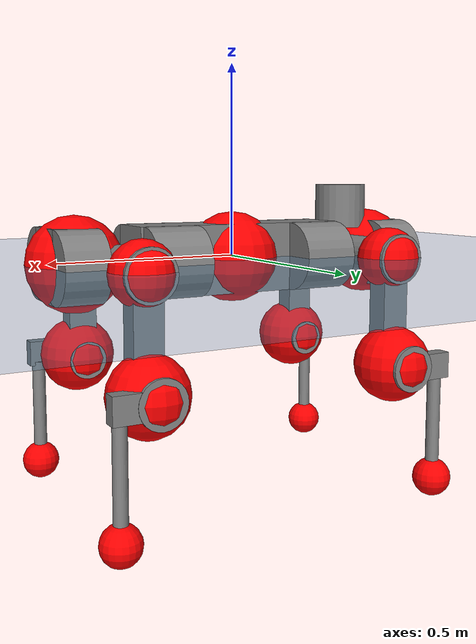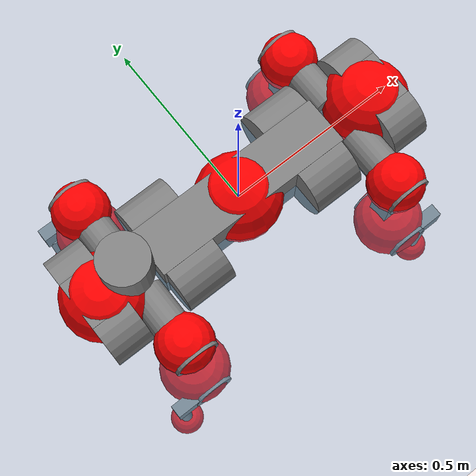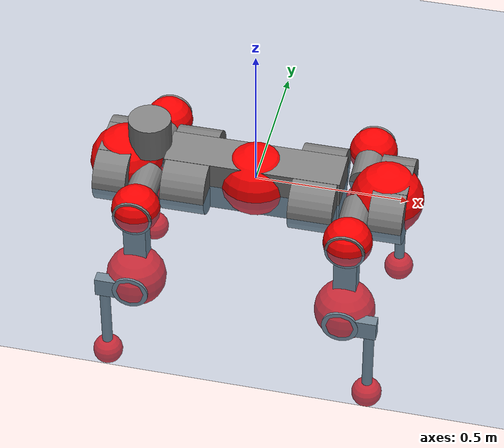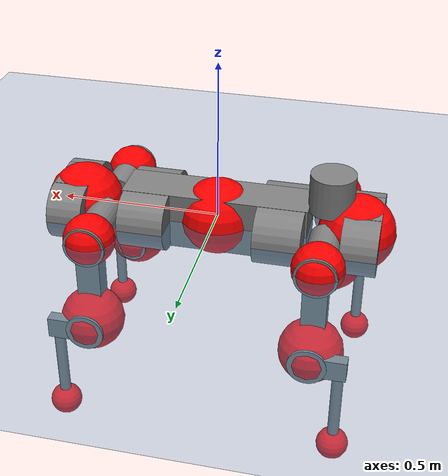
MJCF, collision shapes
<mujoco model="anymal_c">
  <compiler angle="radian" assetdir="assets" balanceinertia="true" inertiafromgeom="false"/>

  <option timestep="0.005" density="1.2" viscosity="2e-05"/>

  <size nkey="1"/>

  <visual>
    <quality shadowsize="8192"/>
    <map shadowclip="0.5"/>
  </visual>

  <default>
    <default class="/">
      <material specular="0" shininess="0.25"/>
      <geom contype="0" conaffinity="0" group="1" solref="-1000 -80"/>
      <site size="0.01 0.005 0.005" group="5"/>
      <general forcelimited="true" forcerange="-80 80" biastype="affine" gainprm="80" biasprm="0 -80 -2"/>
      <default class="anymal_c">
        <joint armature="0.01" damping="0.01" frictionloss="0.1"/>
        <default class="visual">
          <geom type="mesh" group="2"/>
          <default class="visual_zflip"/>
        </default>
        <default class="collision">
          <geom type="cylinder" group="3"/>
          <default class="foot">
            <geom size="0.03 0 0" type="sphere" condim="6" priority="1" friction="0.8 0.02 0.01" solimp="0.015 1 0.03"/>
          </default>
        </default>
      </default>
      <default class="reward_collision_sphere">
        <geom group="5" rgba="1 0 0 1"/>
      </default>
    </default>
  </default>

  <asset>
    <texture type="skybox" colorspace="auto" name="//unnamed_texture_0" builtin="gradient" rgb1="0.95 0.95 0.95" rgb2="0.95 0.95 0.95" width="100" height="600"/>
    <texture type="2d" colorspace="auto" name="texplane" builtin="checker" rgb1="0.345 0.575 0.748" rgb2="0.345 0.575 0.748" markrgb="1 1 1" width="512" height="512"/>
    <texture type="2d" colorspace="linear" name="base" file="base.png"/>
    <texture type="2d" colorspace="linear" name="top_shell" file="top_shell.png"/>
    <texture type="2d" colorspace="linear" name="bottom_shell" file="bottom_shell.png"/>
    <texture type="2d" colorspace="linear" name="remote" file="remote.png"/>
    <texture type="2d" colorspace="linear" name="hatch" file="hatch.png"/>
    <texture type="2d" colorspace="linear" name="handle" file="handle.png"/>
    <texture type="2d" colorspace="linear" name="face" file="face.png"/>
    <texture type="2d" colorspace="linear" name="battery" file="battery.png"/>
    <texture type="2d" colorspace="linear" name="lidar_cage" file="lidar_cage.png"/>
    <texture type="2d" colorspace="linear" name="depth_camera" file="depth_camera.png"/>
    <texture type="2d" colorspace="linear" name="wide_angle_camera" file="wide_angle_camera.png"/>
    <texture type="2d" colorspace="linear" name="lidar" file="lidar.png"/>
    <texture type="2d" colorspace="linear" name="drive" file="drive.png"/>
    <texture type="2d" colorspace="linear" name="hip_l" file="hip_l.png"/>
    <texture type="2d" colorspace="linear" name="shank_l" file="shank_l.png"/>
    <texture type="2d" colorspace="linear" name="foot" file="foot.png"/>
    <texture type="2d" colorspace="linear" name="thigh" file="thigh.png"/>
    <texture type="2d" colorspace="linear" name="shank_r" file="shank_r.png"/>
    <texture type="2d" colorspace="linear" name="hip_r" file="hip_r.png"/>
    <material name="MatPlane" class="/" texture="texplane" texuniform="true" texrepeat="2 2" specular="0.9" shininess="0.5"/>
    <material name="black_plastic" class="/" rgba="0.007 0.007 0.007 1"/>
    <material name="green" class="/" rgba="0.052 0.178 0.033 1"/>
    <material name="red" class="/" rgba="0.178 0.006 0.005 1"/>
    <material name="yellow" class="/" rgba="0.178 0.119 0.006 1"/>
    <material name="lwl" class="/" rgba="0.8 0.8 0.8 1"/>
    <material name="base" class="/" texture="base"/>
    <material name="top_shell" class="/" texture="top_shell"/>
    <material name="bottom_shell" class="/" texture="bottom_shell"/>
    <material name="hip_l" class="/" texture="hip_l"/>
    <material name="thigh" class="/" texture="thigh"/>
    <material name="shank_l" class="/" texture="shank_l"/>
    <material name="foot" class="/" texture="foot"/>
    <material name="hip_r" class="/" texture="hip_r"/>
    <material name="shank" class="/" texture="shank_r"/>
    <material name="hatch" class="/" texture="hatch"/>
    <material name="remote" class="/" texture="remote"/>
    <material name="handle" class="/" texture="handle"/>
    <material name="face" class="/" texture="face"/>
    <material name="depth_camera" class="/" texture="depth_camera"/>
    <material name="wide_angle_camera" class="/" texture="wide_angle_camera"/>
    <material name="battery" class="/" texture="battery"/>
    <material name="lidar_cage" class="/" texture="lidar_cage"/>
    <material name="lidar" class="/" texture="lidar"/>
    <material name="drive" class="/" texture="drive"/>
    <mesh name="base_0" class="/" file="base_0.obj"/>
    <mesh name="base_1" class="/" file="base_1.obj"/>
    <mesh name="base_2" class="/" file="base_2.obj"/>
    <mesh name="base_3" class="/" file="base_3.obj"/>
    <mesh name="base_4" class="/" file="base_4.obj"/>
    <mesh name="base_5" class="/" file="base_5.obj"/>
    <mesh name="top_shell" class="/" file="top_shell.obj"/>
    <mesh name="bottom_shell" class="/" file="bottom_shell.obj"/>
    <mesh name="remote" class="/" file="remote.obj"/>
    <mesh name="handle" class="/" file="handle.obj"/>
    <mesh name="face" class="/" file="face.obj"/>
    <mesh name="wide_angle_camera" class="/" file="wide_angle_camera.obj"/>
    <mesh name="depth_camera" class="/" file="depth_camera.obj"/>
    <mesh name="battery" class="/" file="battery.obj"/>
    <mesh name="lidar_cage" class="/" file="lidar_cage.obj"/>
    <mesh name="lidar" class="/" file="lidar.obj"/>
    <mesh name="drive" class="/" file="drive.obj"/>
    <mesh name="hip_l" class="/" file="hip_l.obj"/>
    <mesh name="thigh" class="/" file="thigh.obj"/>
    <mesh name="shank_l" class="/" file="shank_l.obj"/>
    <mesh name="foot" class="/" file="foot.obj"/>
    <mesh name="hip_r" class="/" file="hip_r.obj"/>
    <mesh name="hatch" class="/" file="hatch.obj"/>
    <mesh name="shank_r" class="/" file="shank_r.obj"/>
  </asset>

  <worldbody>
    <geom name="floor" class="/" size="100 100 0.125" type="plane" group="0" material="MatPlane"/>
    <light name="toplight_shadow" class="/" pos="0 0 5" dir="0.0990148 0.0990148 -0.990148" type="directional" ambient="0.04 0.04 0.04" diffuse="0.55 0.55 0.55" specular="0.12 0.12 0.12"/>
    <light name="toplight_fill" class="/" pos="0 0 5" dir="0.0990148 0.0990148 -0.990148" type="directional" castshadow="false" ambient="0.04 0.04 0.04" diffuse="0.3 0.3 0.3" specular="0.08 0.08 0.08"/>
    <body name="trunk" childclass="anymal_c" pos="-0.000252188 0.000184117 -0.00191277" quat="1 0.000416114 -0.000240419 -7.318e-05">
      <inertial pos="0.00153049 -0.000450075 0.0495383" quat="0.499822 0.501031 0.499529 0.499616" mass="18.3834" diaginertia="0.508583 0.780089 0.181053"/>
      <joint name="//unnamed_joint_0" type="free" armature="0" damping="0" frictionloss="0"/>
      <geom name="//unnamed_geom_1" class="visual" material="green" mesh="base_0"/>
      <geom name="//unnamed_geom_2" class="visual" material="yellow" mesh="base_1"/>
      <geom name="//unnamed_geom_3" class="visual" material="red" mesh="base_2"/>
      <geom name="//unnamed_geom_4" class="visual" material="black_plastic" mesh="base_3"/>
      <geom name="//unnamed_geom_5" class="visual" material="lwl" mesh="base_4"/>
      <geom name="//unnamed_geom_6" class="visual" material="base" mesh="base_5"/>
      <geom name="trunk_1" class="collision" size="0.288456 0.0696274 0.0895209" type="box"/>
      <geom name="trunk_2" class="collision" size="0.0895209 0.0721141" pos="0.20895 0.0738099 0" quat="0.707107 0 0.707107 0"/>
      <geom name="trunk_3" class="collision" size="0.0895209 0.0721141" pos="-0.20895 0.0738099 0" quat="0.707107 0 0.707107 0"/>
      <geom name="trunk_4" class="collision" size="0.0895209 0.0721141" pos="0.20895 -0.0738099 0" quat="0.707107 0 0.707107 0"/>
      <geom name="trunk_5" class="collision" size="0.0895209 0.0721141" pos="-0.20895 -0.0738099 0" quat="0.707107 0 0.707107 0"/>
      <geom name="//unnamed_geom_12" class="visual" material="top_shell" mesh="top_shell"/>
      <geom name="//unnamed_geom_13" class="visual" material="bottom_shell" mesh="bottom_shell"/>
      <geom name="//unnamed_geom_14" class="visual" material="remote" mesh="remote"/>
      <geom name="//unnamed_geom_15" class="visual" material="handle" mesh="handle"/>
      <geom name="//unnamed_geom_16" class="visual" pos="0.398205 0 0" quat="1 0 0 0" material="face" mesh="face"/>
      <geom name="trunk_6" class="collision" size="0.0547072 0.0696274 0.0895209" pos="0.451043 0 0" type="box"/>
      <geom name="//unnamed_geom_18" class="collision" size="0.0895209 0.0547072" pos="0.451043 0.0738099 0" quat="0.707107 0 0.707107 0"/>
      <geom name="//unnamed_geom_19" class="collision" size="0.0895209 0.0547072" pos="0.451043 -0.0738099 0" quat="0.707107 0 0.707107 0"/>
      <geom name="//unnamed_geom_20" class="visual" pos="0.443502 0 -0.0283549" quat="0.965926 0 0.258819 0" material="depth_camera" mesh="depth_camera"/>
      <geom name="//unnamed_geom_21" class="visual" pos="0.492833 0 0.0145047" material="wide_angle_camera" mesh="wide_angle_camera"/>
      <geom name="//unnamed_geom_22" class="visual_zflip" pos="-0.398205 0 0" quat="0 0 0 1" material="face" mesh="face"/>
      <geom name="trunk_7" class="collision" size="0.0547072 0.0696274 0.0895209" pos="-0.451043 0 0" quat="0 0 0 1" type="box"/>
      <geom name="//unnamed_geom_24" class="collision" size="0.0895209 0.0547072" pos="-0.451043 -0.0738099 0" quat="0 -0.707107 0 0.707107"/>
      <geom name="//unnamed_geom_25" class="collision" size="0.0895209 0.0547072" pos="-0.451043 0.0738099 0" quat="0 -0.707107 0 0.707107"/>
      <geom name="//unnamed_geom_26" class="visual" pos="-0.443502 0 -0.0283549" quat="0 -0.258819 0 0.965926" material="depth_camera" mesh="depth_camera"/>
      <geom name="//unnamed_geom_27" class="visual_zflip" pos="-0.492833 0 0.0145047" quat="0 0 0 1" material="wide_angle_camera" mesh="wide_angle_camera"/>
      <geom name="//unnamed_geom_28" class="visual" material="battery" mesh="battery"/>
      <geom name="//unnamed_geom_29" class="visual" pos="0 0.0818518 0.0280845" quat="0.683013 -0.183013 0.183013 0.683013" material="depth_camera" mesh="depth_camera"/>
      <geom name="//unnamed_geom_30" class="visual" pos="0 -0.0818518 0.0280845" quat="0.683013 0.183013 0.183013 -0.683013" material="depth_camera" mesh="depth_camera"/>
      <geom name="//unnamed_geom_31" class="visual" pos="-0.34969 0 0.0712153" quat="1 0 0 0" material="lidar_cage" mesh="lidar_cage"/>
      <geom name="trunk_8" class="collision" size="0.0696274 0.0596806" pos="-0.34969 0 0.12935"/>
      <geom name="//unnamed_geom_33" class="visual" pos="-0.34969 3.68275e-05 0.13778" quat="0.707107 0 0 -0.707107" material="lidar" mesh="lidar"/>
      <geom name="//unnamed_geom_34" class="visual" pos="0.28811 0.10963 1.47507e-09" quat="0.258819 0.965926 0 0" material="drive" mesh="drive"/>
      <geom name="//unnamed_geom_35" class="visual" pos="0.28811 -0.10963 -1.47507e-09" quat="0.258819 -0.965926 0 0" material="drive" mesh="drive"/>
      <geom name="//unnamed_geom_36" class="visual" pos="-0.28811 0.10963 -1.47507e-09" quat="0 0 0.965926 -0.258819" material="drive" mesh="drive"/>
      <geom name="//unnamed_geom_37" class="visual" pos="-0.28811 -0.10963 1.47507e-09" quat="0 0 -0.965926 -0.258819" material="drive" mesh="drive"/>
      <geom name="//unnamed_geom_38" class="visual" pos="0.11144 0 0.0707309" quat="1 0 0 0" material="hatch" mesh="hatch"/>
      <geom name="//unnamed_geom_39" class="reward_collision_sphere" size="0.119361"/>
      <geom name="//unnamed_geom_40" class="reward_collision_sphere" size="0.119361" pos="0.43231 0 0"/>
      <geom name="//unnamed_geom_41" class="reward_collision_sphere" size="0.119361" pos="-0.43231 0 0"/>
      <site name="imu" pos="0.251891 -0.004374 0.0581847" size="0.00994677"/>
      <camera name="track" pos="0 -2.10885 0" quat="0.707107 0.707107 0 0" mode="trackcom"/>
      <camera name="ego_camera" pos="0.43231 0 -0.0387566" quat="-0.5 -0.5 0.5 0.5"/>
      <body name="LF_HIP" pos="0.289363 0.107744 6.79481e-05" quat="0.258135 0.966108 -0.00023475 0.000864915">
        <inertial pos="0.0538151 -0.0149307 -0.010624" quat="-0.125712 0.709698 -0.133117 0.680298" mass="2.58889" diaginertia="0.00464548 0.00601799 0.00281711"/>
        <joint name="LF_HAA" pos="0 0 0" axis="1 0.000134231 0.000585482" range="-0.773931 0.49861" armature="0.0112386" damping="0.0225734" frictionloss="0.0947279"/>
        <geom name="//unnamed_geom_42" class="visual" pos="0 8.67715e-05 -1.42521e-05" quat="0.258819 -0.965926 0 0" material="hip_l" mesh="hip_l"/>
        <geom name="//unnamed_geom_43" class="visual" pos="0.0575452 -0.0709321 -0.0403202" quat="0.183013 -0.683013 0.683013 0.183013" material="drive" mesh="drive"/>
        <geom name="//unnamed_geom_44" class="collision" size="0.0497338 0.0696274" pos="0.0575452 -0.0126107 -0.00669037" quat="-0.353553 -0.612372 0.612372 -0.353553"/>
        <body name="LF_THIGH" pos="0.0576771 -0.078176 -0.0384741" quat="0.182717 -0.682995 0.683113 0.183">
          <inertial pos="0.0306715 0.000300038 -0.240655" quat="0.993114 -0.00726683 -0.077914 0.0871868" mass="3.08166" diaginertia="0.0245586 0.039476 0.00360443"/>
          <joint name="LF_HFE" pos="0 0 0" axis="0.999925 -0.0106373 -0.00602563" range="-3.18639 3.19393" armature="0.0109091" damping="0.0108486" frictionloss="0.0990116"/>
          <geom name="//unnamed_geom_45" class="visual" pos="-0.00186503 -2.93886e-06 0" quat="0.707107 0 0 -0.707107" material="thigh" mesh="thigh"/>
          <geom name="//unnamed_geom_46" class="collision" size="0.064654 0.0397871" pos="0.0384275 0 0" quat="0.5 0.5 -0.5 -0.5"/>
          <geom name="//unnamed_geom_47" class="collision" size="0.0373004 0.0298403 0.140562" pos="0.0288206 0 -0.136921" quat="0.707107 0 0 -0.707107" type="box"/>
          <geom name="//unnamed_geom_48" class="visual" pos="0.096357 0 -0.276141" quat="1 0 0 0" material="drive" mesh="drive"/>
          <geom name="//unnamed_geom_49" class="collision" size="0.0497338 0.0696274" pos="0.0291088 0 -0.276141" quat="0.707107 0 0.707107 0"/>
          <geom name="//unnamed_geom_50" class="reward_collision_sphere" size="0.0795741" pos="0.0240172 0 0"/>
          <body name="LF_SHANK" pos="0.0941028 0.00194413 -0.274489" quat="1 3.44134e-05 -1.28839e-06 4.49433e-05">
            <inertial pos="0.00582017 -0.0645926 -0.0785645" quat="0.992855 -0.116451 -0.0002242 -0.0260527" mass="0.548147" diaginertia="0.00829834 0.0121948 0.000928734"/>
            <joint name="LF_KFE" pos="0 0 0" axis="0.999973 0.0044534 -0.00588833" range="-3.13315 3.11733" armature="0.008665" damping="0.0133919" frictionloss="0.0900144"/>
            <geom name="//unnamed_geom_51" class="visual" pos="-0.000608147 -0.00324267 0" quat="0.707107 0 0 -0.707107" material="shank_l" mesh="shank_l"/>
            <geom name="LF_kfe_act" class="collision" size="0.0596806 0.0198935" pos="0.0192138 0 0" quat="0.5 0.5 -0.5 -0.5"/>
            <geom name="//unnamed_geom_53" class="collision" size="0.0571929 0.0335703 0.0188989" pos="0.0192138 -0.0606285 0" quat="0.5 0.5 -0.5 -0.5" type="box"/>
            <geom name="//unnamed_geom_54" class="visual" pos="0.0125371 -0.0937818 -0.327465" quat="0.382683 0 0 -0.92388" material="foot" mesh="foot"/>
            <geom name="LF_calf" class="collision" size="0.0174068 0.1405" pos="0.012537 -0.0927368 -0.163732" quat="0.707107 0 0 -0.707107"/>
            <geom name="LF_foot" class="foot" size="0.0306317" pos="0.012537 -0.0927368 -0.305664" quat="0.707107 0 0 -0.707107"/>
            <geom name="//unnamed_geom_57" class="reward_collision_sphere" size="0.0994677" pos="-0.0480344 0 0"/>
            <geom name="//unnamed_geom_58" class="reward_collision_sphere" size="0.0497338" pos="0.012537 -0.0927368 -0.305664"/>
            <site name="LF_foot" class="foot" pos="0.012537 -0.0927368 -0.305664" quat="0.707107 0 0 -0.707107" size="0.00994677"/>
          </body>
        </body>
      </body>
      <body name="RF_HIP" pos="0.291197 -0.112115 0.00125146" quat="0.258383 -0.966043 0.000355548 -9.42106e-05">
        <inertial pos="0.054658 0.0174865 -0.00920154" quat="0.134424 0.678685 0.128304 0.710531" mass="2.80758" diaginertia="0.00481317 0.00617306 0.00280689"/>
        <joint name="RF_HAA" pos="0 0 0" axis="0.999989 0.00428859 -0.00162761" stiffness="0.00406787" range="-0.462689 0.721482" armature="0.0103795" damping="0.0210233" frictionloss="0.0879701"/>
        <geom name="//unnamed_geom_59" class="visual" pos="0 -8.67708e-05 -1.42521e-05" quat="0.258819 0.965926 0 0" material="hip_r" mesh="hip_r"/>
        <geom name="//unnamed_geom_60" class="visual" pos="0.0575452 0.0709321 -0.0403202" quat="0.183013 0.683013 0.683013 -0.183013" material="drive" mesh="drive"/>
        <geom name="//unnamed_geom_61" class="collision" size="0.0497338 0.0696274" pos="0.0575452 0.0126107 -0.00669037" quat="-0.353553 0.612372 0.612372 0.353553"/>
        <body name="RF_THIGH" pos="0.0564628 0.0788648 -0.0423606" quat="0.184307 0.682981 0.682473 -0.183844">
          <inertial pos="0.0287088 -0.000643701 -0.237676" quat="0.992786 -0.00511616 -0.0805822 0.0886365" mass="2.86858" diaginertia="0.0243607 0.0369729 0.00357108"/>
          <joint name="RF_HFE" pos="0 0 0" axis="0.999997 -0.00108662 0.0020927" stiffness="0.00588573" range="-3.17163 3.14084" armature="0.00948364" damping="0.00488811" frictionloss="0.0906164"/>
          <geom name="//unnamed_geom_62" class="visual" pos="-0.00186503 -2.93886e-06 0" quat="0.707107 0 0 -0.707107" material="thigh" mesh="thigh"/>
          <geom name="//unnamed_geom_63" class="collision" size="0.064654 0.0397871" pos="0.0384275 0 0" quat="0.5 0.5 0.5 0.5"/>
          <geom name="//unnamed_geom_64" class="collision" size="0.0373004 0.0298403 0.140562" pos="0.0288206 0 -0.136921" quat="0.707107 0 0 0.707107" type="box"/>
          <geom name="//unnamed_geom_65" class="visual" pos="0.096357 0 -0.276141" quat="1 0 0 0" material="drive" mesh="drive"/>
          <geom name="//unnamed_geom_66" class="collision" size="0.0497338 0.0696274" pos="0.0291088 0 -0.276141" quat="0.707107 0 0.707107 0"/>
          <geom name="//unnamed_geom_67" class="reward_collision_sphere" size="0.0795741" pos="0.0240172 0 0"/>
          <body name="RF_SHANK" pos="0.0960326 0.00205908 -0.27352" quat="1 -6.79338e-05 -0.00040303 0.000347258">
            <inertial pos="0.00278457 0.06286 -0.0791048" quat="0.991851 0.125453 0.00392893 0.0218759" mass="0.592832" diaginertia="0.00858575 0.0121978 0.000968113"/>
            <joint name="RF_KFE" pos="0 0 0" axis="0.999962 -0.00711167 -0.00503101" range="-3.08877 3.11908" armature="0.0100667" damping="0.01264" frictionloss="0.107137"/>
            <geom name="//unnamed_geom_68" class="visual" pos="-0.000608143 0.00324266 0" quat="0.707107 0 0 0.707107" material="shank" mesh="shank_r"/>
            <geom name="RF_kfe_act" class="collision" size="0.0596806 0.0198935" pos="0.0192138 0 0" quat="0.5 0.5 0.5 0.5"/>
            <geom name="//unnamed_geom_70" class="collision" size="0.0571929 0.0335703 0.0188989" pos="0.0192138 0.0606285 0" quat="0.5 0.5 0.5 0.5" type="box"/>
            <geom name="//unnamed_geom_71" class="visual" pos="0.0125368 0.0937818 -0.327465" quat="0.382683 0 0 0.92388" material="foot" mesh="foot"/>
            <geom name="RF_calf" class="collision" size="0.0174068 0.1405" pos="0.012537 0.0927368 -0.163732" quat="0.707107 0 0 0.707107"/>
            <geom name="RF_foot" class="foot" size="0.0293851" pos="0.012537 0.0927368 -0.305664" quat="0.707107 0 0 0.707107"/>
            <geom name="//unnamed_geom_74" class="reward_collision_sphere" size="0.0994677" pos="-0.0480344 0 0"/>
            <geom name="//unnamed_geom_75" class="reward_collision_sphere" size="0.0497338" pos="0.012537 0.0927368 -0.305664"/>
            <site name="RF_foot" class="foot" pos="0.012537 0.0927368 -0.305664" quat="0.707107 0 0 0.707107" size="0.00994677"/>
          </body>
        </body>
      </body>
      <body name="LH_HIP" pos="-0.28883 0.111307 0.000412088" quat="-2.62549e-05 3.05691e-06 0.965924 -0.258826">
        <inertial pos="0.0518345 0.0152188 -0.00714821" quat="0.138581 0.671775 0.128057 0.716321" mass="2.80147" diaginertia="0.00495391 0.00660163 0.00271646"/>
        <joint name="LH_HAA" pos="0 0 0" axis="0.999962 0.00833496 0.00243018" range="-0.460301 0.667937" armature="0.0101867" damping="0" frictionloss="0.112987"/>
        <geom name="//unnamed_geom_76" class="visual" pos="0 -8.67708e-05 -1.42521e-05" quat="-0.258819 -0.965926 0 0" material="hip_r" mesh="hip_r"/>
        <geom name="//unnamed_geom_77" class="visual" pos="0.0575452 0.0709321 -0.0403202" quat="0.183013 0.683013 0.683013 -0.183013" material="drive" mesh="drive"/>
        <geom name="//unnamed_geom_78" class="collision" size="0.0497338 0.0696274" pos="0.0575452 0.0126107 -0.00669037" quat="-0.353553 0.612372 0.612372 0.353553"/>
        <body name="LH_THIGH" pos="0.0569824 0.0755761 -0.0417915" quat="0.182863 0.681979 0.683985 -0.183387">
          <inertial pos="0.0271501 -0.00200596 -0.237677" quat="0.994037 -0.0118455 -0.0715039 0.0814694" mass="2.96985" diaginertia="0.0243368 0.0375916 0.00368659"/>
          <joint name="LH_HFE" pos="0 0 0" axis="0.999998 -0.000575638 0.00179515" stiffness="0.010575" range="-3.14884 3.14046" armature="0.0099665" damping="0.00302329" frictionloss="0.100643"/>
          <geom name="//unnamed_geom_79" class="visual" pos="-0.00186503 -2.93886e-06 0" quat="0.707107 0 0 -0.707107" material="thigh" mesh="thigh"/>
          <geom name="//unnamed_geom_80" class="collision" size="0.064654 0.0397871" pos="0.0384275 0 0" quat="0.5 0.5 -0.5 -0.5"/>
          <geom name="//unnamed_geom_81" class="collision" size="0.0373004 0.0298403 0.140562" pos="0.0288206 0 -0.136921" quat="0.707107 0 0 -0.707107" type="box"/>
          <geom name="//unnamed_geom_82" class="visual" pos="0.096357 0 -0.276141" quat="1 0 0 0" material="drive" mesh="drive"/>
          <geom name="//unnamed_geom_83" class="collision" size="0.0497338 0.0696274" pos="0.0291088 0 -0.276141" quat="0.707107 0 0.707107 0"/>
          <geom name="//unnamed_geom_84" class="reward_collision_sphere" size="0.0795741" pos="0.0240172 0 0"/>
          <body name="LH_SHANK" pos="0.0977423 -0.00136409 -0.276657" quat="1 0.00039289 -0.000209499 0.0002012">
            <inertial pos="0.00671549 0.0619048 -0.0802393" quat="0.992927 0.115977 -0.000952692 0.0253958" mass="0.561393" diaginertia="0.00785991 0.011744 0.000908312"/>
            <joint name="LH_KFE" pos="0 0 0" axis="0.999964 -0.00347632 0.00775938" stiffness="0.000203114" range="-3.1536 3.18161" armature="0.00975503" damping="0.0150617" frictionloss="0.11316"/>
            <geom name="//unnamed_geom_85" class="visual" pos="-0.000608143 0.00324266 0" quat="-0.707107 0 0 -0.707107" material="shank" mesh="shank_r"/>
            <geom name="LH_kfe_act" class="collision" size="0.0596806 0.0198935" pos="0.0192138 0 0" quat="0.5 0.5 -0.5 -0.5"/>
            <geom name="//unnamed_geom_87" class="collision" size="0.0571929 0.0335703 0.0188989" pos="0.0192138 0.0606285 0" quat="0.5 0.5 -0.5 -0.5" type="box"/>
            <geom name="//unnamed_geom_88" class="visual" pos="0.0125368 0.0937818 -0.327465" quat="-0.382683 0 0 -0.92388" material="foot" mesh="foot"/>
            <geom name="LH_calf" class="collision" size="0.0174068 0.1405" pos="0.012537 0.0927368 -0.163732" quat="0.707107 0 0 -0.707107"/>
            <geom name="LH_foot" class="foot" size="0.0310835" pos="0.012537 0.0927368 -0.305664" quat="0.707107 0 0 -0.707107"/>
            <geom name="//unnamed_geom_91" class="reward_collision_sphere" size="0.0994677" pos="-0.0480344 0 0"/>
            <geom name="//unnamed_geom_92" class="reward_collision_sphere" size="0.0497338" pos="0.012537 0.0927368 -0.305664"/>
            <site name="LH_foot" class="foot" pos="0.012537 0.0927368 -0.305664" quat="0.707107 0 0 -0.707107" size="0.00994677"/>
          </body>
        </body>
      </body>
      <body name="RH_HIP" pos="-0.287535 -0.108426 0.000926663" quat="0.000264371 -0.000169853 -0.96599 -0.258579">
        <inertial pos="0.0560786 -0.0134632 -0.0110006" quat="-0.135043 0.710247 -0.136203 0.677319" mass="2.58883" diaginertia="0.00479781 0.00601818 0.00272133"/>
        <joint name="RH_HAA" pos="0 0 0" axis="0.999893 0.0063404 0.0132036" range="-0.73636 0.533451" armature="0.00967245" damping="0.00373745" frictionloss="0.111278"/>
        <geom name="//unnamed_geom_93" class="visual" pos="0 8.67715e-05 -1.42521e-05" quat="-0.258819 0.965926 0 0" material="hip_l" mesh="hip_l"/>
        <geom name="//unnamed_geom_94" class="visual" pos="0.0575452 -0.0709321 -0.0403202" quat="-0.183013 0.683013 -0.683013 -0.183013" material="drive" mesh="drive"/>
        <geom name="//unnamed_geom_95" class="collision" size="0.0497338 0.0696274" pos="0.0575452 -0.0126107 -0.00669037" quat="0.353553 0.612372 -0.612372 0.353553"/>
        <body name="RH_THIGH" pos="0.0568101 -0.0778106 -0.0396192" quat="-0.183076 0.682948 -0.683049 -0.183056">
          <inertial pos="0.0297609 -0.00169609 -0.235347" quat="0.992533 -0.00364485 -0.0872119 0.0852023" mass="3.07112" diaginertia="0.0255159 0.0402508 0.00365677"/>
          <joint name="RH_HFE" pos="0 0 0" axis="0.999938 0.00972822 -0.00547309" stiffness="0.00403881" range="-3.08552 3.14344" armature="0.00911005" damping="0.00767803" frictionloss="0.111508"/>
          <geom name="//unnamed_geom_96" class="visual" pos="-0.00186503 -2.93886e-06 0" quat="0.707107 0 0 -0.707107" material="thigh" mesh="thigh"/>
          <geom name="//unnamed_geom_97" class="collision" size="0.064654 0.0397871" pos="0.0384275 0 0" quat="0.5 0.5 0.5 0.5"/>
          <geom name="//unnamed_geom_98" class="collision" size="0.0373004 0.0298403 0.140562" pos="0.0288206 0 -0.136921" quat="0.707107 0 0 0.707107" type="box"/>
          <geom name="//unnamed_geom_99" class="visual" pos="0.096357 0 -0.276141" quat="1 0 0 0" material="drive" mesh="drive"/>
          <geom name="//unnamed_geom_100" class="collision" size="0.0497338 0.0696274" pos="0.0291088 0 -0.276141" quat="0.707107 0 0.707107 0"/>
          <geom name="//unnamed_geom_101" class="reward_collision_sphere" size="0.0795741" pos="0.0240172 0 0"/>
          <body name="RH_SHANK" pos="0.0973281 -0.00140959 -0.273306" quat="1 0.000197994 0.000165261 0.000848537">
            <inertial pos="0.00806246 -0.0639172 -0.0785688" quat="0.99275 -0.116977 -0.00397807 -0.027366" mass="0.55843" diaginertia="0.00816206 0.0112857 0.000902988"/>
            <joint name="RH_KFE" pos="0 0 0" axis="1 1.98805e-05 -0.000179595" range="-3.11089 3.14525" armature="0.010331" damping="0.00657711" frictionloss="0.102996"/>
            <geom name="//unnamed_geom_102" class="visual" pos="-0.000608147 -0.00324267 0" quat="0.707107 0 0 -0.707107" material="shank_l" mesh="shank_l"/>
            <geom name="RH_kfe_act" class="collision" size="0.0596806 0.0198935" pos="0.0192138 0 0" quat="0.5 0.5 0.5 0.5"/>
            <geom name="//unnamed_geom_104" class="collision" size="0.0571929 0.0335703 0.0188989" pos="0.0192138 -0.0606285 0" quat="0.5 0.5 0.5 0.5" type="box"/>
            <geom name="//unnamed_geom_105" class="visual" pos="0.0125371 -0.0937818 -0.327465" quat="0.382683 0 0 -0.92388" material="foot" mesh="foot"/>
            <geom name="RH_calf" class="collision" size="0.0174068 0.1405" pos="0.012537 -0.0927368 -0.163732" quat="0.707107 0 0 0.707107"/>
            <geom name="RH_foot" class="foot" size="0.0316873" pos="0.012537 -0.0927368 -0.305664" quat="0.707107 0 0 0.707107"/>
            <geom name="//unnamed_geom_108" class="reward_collision_sphere" size="0.0994677" pos="-0.0480344 0 0"/>
            <geom name="//unnamed_geom_109" class="reward_collision_sphere" size="0.0497338" pos="0.012537 -0.0927368 -0.305664"/>
            <site name="RH_foot" class="foot" pos="0.012537 -0.0927368 -0.305664" quat="0.707107 0 0 0.707107" size="0.00994677"/>
          </body>
        </body>
      </body>
    </body>
  </worldbody>

  <contact>
    <pair class="/" geom1="floor" geom2="LF_foot" name="//unnamed_contact_0"/>
    <pair class="/" geom1="floor" geom2="RF_foot" name="//unnamed_contact_1"/>
    <pair class="/" geom1="floor" geom2="LH_foot" name="//unnamed_contact_2"/>
    <pair class="/" geom1="floor" geom2="RH_foot" name="//unnamed_contact_3"/>
  </contact>

  <actuator>
    <general name="LF_HAA" class="/" joint="LF_HAA" forcerange="-72.2786 72.2786" gainprm="79.715" biasprm="0 -79.715 -2.12168"/>
    <general name="LF_HFE" class="/" joint="LF_HFE" forcerange="-83.9033 83.9033" gainprm="79.715" biasprm="0 -79.715 -2.12168"/>
    <general name="LF_KFE" class="/" joint="LF_KFE" forcerange="-85.4403 85.4403" gainprm="79.715" biasprm="0 -79.715 -2.12168"/>
    <general name="RF_HAA" class="/" joint="RF_HAA" forcerange="-73.8968 73.8968" gainprm="79.715" biasprm="0 -79.715 -2.12168"/>
    <general name="RF_HFE" class="/" joint="RF_HFE" forcerange="-89.4024 89.4024" gainprm="79.715" biasprm="0 -79.715 -2.12168"/>
    <general name="RF_KFE" class="/" joint="RF_KFE" forcerange="-71.5674 71.5674" gainprm="79.715" biasprm="0 -79.715 -2.12168"/>
    <general name="LH_HAA" class="/" joint="LH_HAA" forcerange="-86.3894 86.3894" gainprm="79.715" biasprm="0 -79.715 -2.12168"/>
    <general name="LH_HFE" class="/" joint="LH_HFE" forcerange="-80.7084 80.7084" gainprm="79.715" biasprm="0 -79.715 -2.12168"/>
    <general name="LH_KFE" class="/" joint="LH_KFE" forcerange="-72.099 72.099" gainprm="79.715" biasprm="0 -79.715 -2.12168"/>
    <general name="RH_HAA" class="/" joint="RH_HAA" forcerange="-83.3745 83.3745" gainprm="79.715" biasprm="0 -79.715 -2.12168"/>
    <general name="RH_HFE" class="/" joint="RH_HFE" forcerange="-77.1722 77.1722" gainprm="79.715" biasprm="0 -79.715 -2.12168"/>
    <general name="RH_KFE" class="/" joint="RH_KFE" forcerange="-75.2217 75.2217" gainprm="79.715" biasprm="0 -79.715 -2.12168"/>
  </actuator>

  <sensor>
    <gyro site="imu" name="imu_angular_velocity"/>
    <velocimeter site="imu" name="imu_linear_velocity"/>
    <framelinvel objtype="site" objname="LF_foot" name="LF_foot_global_linear_velocity"/>
    <framelinvel objtype="site" objname="RF_foot" name="RF_foot_global_linear_velocity"/>
    <framelinvel objtype="site" objname="LH_foot" name="LH_foot_global_linear_velocity"/>
    <framelinvel objtype="site" objname="RH_foot" name="RH_foot_global_linear_velocity"/>
  </sensor>

  <keyframe>
    <key name="home" qpos="0 0 0.55 1 0 0 0 0 0.4 -0.8 0 -0.4 0.8 0 -0.4 0.8 0 0.4 -0.8"/>
  </keyframe>
</mujoco>
